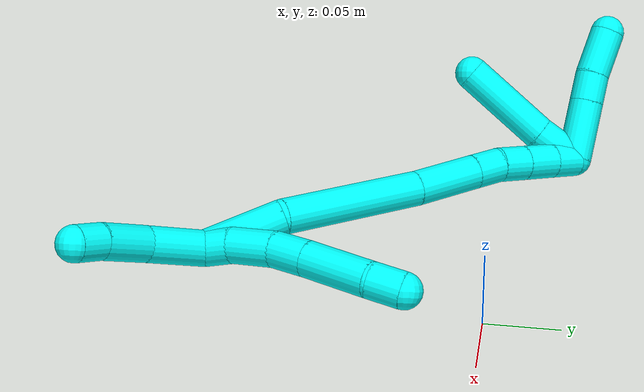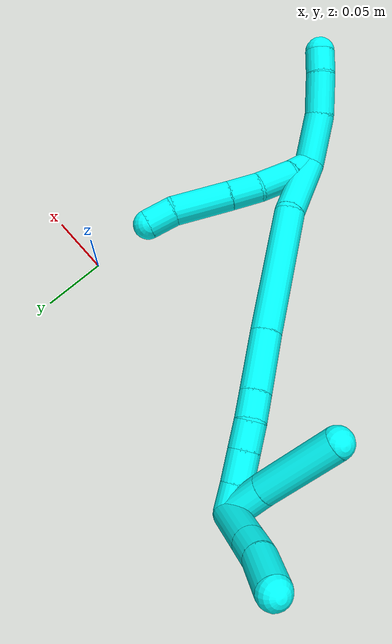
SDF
<sdf version="1.7">
 <world name="default">
  <model name="3">
   <static>0</static>
   <link name="3">
    <collision name="collision-cylinder-e_1_2_8">
     <pose>0.002503 0.009712 0.001713 -1.39621 0.248533 -0.208851</pose>
     <geometry><cylinder><radius>0.0125</radius><length>0.020349</length></cylinder></geometry>
     <surface>
      <friction><ode><mu>1.16</mu><mu2>1.16</mu2><slip1>0</slip1><slip2>0</slip2></ode></friction>
      <contact><ode><kp>1e+06</kp><kd>1</kd><max_vel>0</max_vel><min_depth>0.001</min_depth></ode></contact>
     </surface>
    </collision>
    <visual name="visual-cylinder-e_1_2_8">
     <pose>0.002503 0.009712 0.001713 -1.39621 0.248533 -0.208851</pose>
     <geometry><cylinder><radius>0.0125</radius><length>0.020349</length></cylinder></geometry>
     <material><ambient>0.003922 1 0.996078 1</ambient></material>
    </visual>
    <collision name="collision-cylinder-e_2_8_9">
     <pose>0.010157 0.034553 0.003072 -1.59421 0.328111 -0.335742</pose>
     <geometry><cylinder><radius>0.0125</radius><length>0.031972</length></cylinder></geometry>
     <surface>
      <friction><ode><mu>1.16</mu><mu2>1.16</mu2><slip1>0</slip1><slip2>0</slip2></ode></friction>
      <contact><ode><kp>1e+06</kp><kd>1</kd><max_vel>0</max_vel><min_depth>0.001</min_depth></ode></contact>
     </surface>
    </collision>
    <visual name="visual-cylinder-e_2_8_9">
     <pose>0.010157 0.034553 0.003072 -1.59421 0.328111 -0.335742</pose>
     <geometry><cylinder><radius>0.0125</radius><length>0.031972</length></cylinder></geometry>
     <material><ambient>0.003922 1 0.996078 1</ambient></material>
    </visual>
    <collision name="collision-cylinder-e_3_9_10">
     <pose>0.020408 0.061169 0.000399 -1.76994 0.410439 -0.498147</pose>
     <geometry><cylinder><radius>0.0125</radius><length>0.025559</length></cylinder></geometry>
     <surface>
      <friction><ode><mu>1.16</mu><mu2>1.16</mu2><slip1>0</slip1><slip2>0</slip2></ode></friction>
      <contact><ode><kp>1e+06</kp><kd>1</kd><max_vel>0</max_vel><min_depth>0.001</min_depth></ode></contact>
     </surface>
    </collision>
    <visual name="visual-cylinder-e_3_9_10">
     <pose>0.020408 0.061169 0.000399 -1.76994 0.410439 -0.498147</pose>
     <geometry><cylinder><radius>0.0125</radius><length>0.025559</length></cylinder></geometry>
     <material><ambient>0.003922 1 0.996078 1</ambient></material>
    </visual>
    <collision name="collision-cylinder-e_4_10_11">
     <pose>0.035472 0.094188 -0.006984 -1.80183 0.423254 -0.529746</pose>
     <geometry><cylinder><radius>0.0125</radius><length>0.048522</length></cylinder></geometry>
     <surface>
      <friction><ode><mu>1.16</mu><mu2>1.16</mu2><slip1>0</slip1><slip2>0</slip2></ode></friction>
      <contact><ode><kp>1e+06</kp><kd>1</kd><max_vel>0</max_vel><min_depth>0.001</min_depth></ode></contact>
     </surface>
    </collision>
    <visual name="visual-cylinder-e_4_10_11">
     <pose>0.035472 0.094188 -0.006984 -1.80183 0.423254 -0.529746</pose>
     <geometry><cylinder><radius>0.0125</radius><length>0.048522</length></cylinder></geometry>
     <material><ambient>0.003922 1 0.996078 1</ambient></material>
    </visual>
    <collision name="collision-cylinder-e_5_11_6">
     <pose>0.047804 0.126961 -0.014744 -1.80611 0.201999 -0.255627</pose>
     <geometry><cylinder><radius>0.0125</radius><length>0.023597</length></cylinder></geometry>
     <surface>
      <friction><ode><mu>1.16</mu><mu2>1.16</mu2><slip1>0</slip1><slip2>0</slip2></ode></friction>
      <contact><ode><kp>1e+06</kp><kd>1</kd><max_vel>0</max_vel><min_depth>0.001</min_depth></ode></contact>
     </surface>
    </collision>
    <visual name="visual-cylinder-e_5_11_6">
     <pose>0.047804 0.126961 -0.014744 -1.80611 0.201999 -0.255627</pose>
     <geometry><cylinder><radius>0.0125</radius><length>0.023597</length></cylinder></geometry>
     <material><ambient>0.003922 1 0.996078 1</ambient></material>
    </visual>
    <collision name="collision-cylinder-e_1_2_12">
     <pose>0.013286 -0.017659 0.000816 1.52459 0.644494 0.617236</pose>
     <geometry><cylinder><radius>0.0125</radius><length>0.044227</length></cylinder></geometry>
     <surface>
      <friction><ode><mu>1.16</mu><mu2>1.16</mu2><slip1>0</slip1><slip2>0</slip2></ode></friction>
      <contact><ode><kp>1e+06</kp><kd>1</kd><max_vel>0</max_vel><min_depth>0.001</min_depth></ode></contact>
     </surface>
    </collision>
    <visual name="visual-cylinder-e_1_2_12">
     <pose>0.013286 -0.017659 0.000816 1.52459 0.644494 0.617236</pose>
     <geometry><cylinder><radius>0.0125</radius><length>0.044227</length></cylinder></geometry>
     <material><ambient>0.003922 1 0.996078 1</ambient></material>
    </visual>
    <collision name="collision-cylinder-e_2_12_13">
     <pose>0.039789 -0.047263 0.002139 1.52847 0.835464 0.804509</pose>
     <geometry><cylinder><radius>0.0125</radius><length>0.035647</length></cylinder></geometry>
     <surface>
      <friction><ode><mu>1.16</mu><mu2>1.16</mu2><slip1>0</slip1><slip2>0</slip2></ode></friction>
      <contact><ode><kp>1e+06</kp><kd>1</kd><max_vel>0</max_vel><min_depth>0.001</min_depth></ode></contact>
     </surface>
    </collision>
    <visual name="visual-cylinder-e_2_12_13">
     <pose>0.039789 -0.047263 0.002139 1.52847 0.835464 0.804509</pose>
     <geometry><cylinder><radius>0.0125</radius><length>0.035647</length></cylinder></geometry>
     <material><ambient>0.003922 1 0.996078 1</ambient></material>
    </visual>
    <collision name="collision-cylinder-e_3_13_5">
     <pose>0.060497 -0.065862 0.001693 1.71293 0.839432 0.950566</pose>
     <geometry><cylinder><radius>0.0125</radius><length>0.020127</length></cylinder></geometry>
     <surface>
      <friction><ode><mu>1.16</mu><mu2>1.16</mu2><slip1>0</slip1><slip2>0</slip2></ode></friction>
      <contact><ode><kp>1e+06</kp><kd>1</kd><max_vel>0</max_vel><min_depth>0.001</min_depth></ode></contact>
     </surface>
    </collision>
    <visual name="visual-cylinder-e_3_13_5">
     <pose>0.060497 -0.065862 0.001693 1.71293 0.839432 0.950566</pose>
     <geometry><cylinder><radius>0.0125</radius><length>0.020127</length></cylinder></geometry>
     <material><ambient>0.003922 1 0.996078 1</ambient></material>
    </visual>
    <collision name="collision-cylinder-e_1_2_14">
     <pose>-0.006755 0.025058 0.012005 -1.124 -0.238493 0.150619</pose>
     <geometry><cylinder><radius>0.0125</radius><length>0.057189</length></cylinder></geometry>
     <surface>
      <friction><ode><mu>1.16</mu><mu2>1.16</mu2><slip1>0</slip1><slip2>0</slip2></ode></friction>
      <contact><ode><kp>1e+06</kp><kd>1</kd><max_vel>0</max_vel><min_depth>0.001</min_depth></ode></contact>
     </surface>
    </collision>
    <visual name="visual-cylinder-e_1_2_14">
     <pose>-0.006755 0.025058 0.012005 -1.124 -0.238493 0.150619</pose>
     <geometry><cylinder><radius>0.0125</radius><length>0.057189</length></cylinder></geometry>
     <material><ambient>0.003922 1 0.996078 1</ambient></material>
    </visual>
    <collision name="collision-cylinder-e_2_14_15">
     <pose>-0.039936 0.093705 0.036258 -1.29689 -0.528312 0.404311</pose>
     <geometry><cylinder><radius>0.0125</radius><length>0.10485</length></cylinder></geometry>
     <surface>
      <friction><ode><mu>1.16</mu><mu2>1.16</mu2><slip1>0</slip1><slip2>0</slip2></ode></friction>
      <contact><ode><kp>1e+06</kp><kd>1</kd><max_vel>0</max_vel><min_depth>0.001</min_depth></ode></contact>
     </surface>
    </collision>
    <visual name="visual-cylinder-e_2_14_15">
     <pose>-0.039936 0.093705 0.036258 -1.29689 -0.528312 0.404311</pose>
     <geometry><cylinder><radius>0.0125</radius><length>0.10485</length></cylinder></geometry>
     <material><ambient>0.003922 1 0.996078 1</ambient></material>
    </visual>
    <collision name="collision-cylinder-e_3_15_16">
     <pose>-0.078262 0.157307 0.055698 -1.22575 -0.510131 0.362685</pose>
     <geometry><cylinder><radius>0.0125</radius><length>0.048738</length></cylinder></geometry>
     <surface>
      <friction><ode><mu>1.16</mu><mu2>1.16</mu2><slip1>0</slip1><slip2>0</slip2></ode></friction>
      <contact><ode><kp>1e+06</kp><kd>1</kd><max_vel>0</max_vel><min_depth>0.001</min_depth></ode></contact>
     </surface>
    </collision>
    <visual name="visual-cylinder-e_3_15_16">
     <pose>-0.078262 0.157307 0.055698 -1.22575 -0.510131 0.362685</pose>
     <geometry><cylinder><radius>0.0125</radius><length>0.048738</length></cylinder></geometry>
     <material><ambient>0.003922 1 0.996078 1</ambient></material>
    </visual>
    <collision name="collision-cylinder-e_4_16_17">
     <pose>-0.095497 0.186322 0.066076 -1.2308 -0.5096 0.364206</pose>
     <geometry><cylinder><radius>0.0125</radius><length>0.021877</length></cylinder></geometry>
     <surface>
      <friction><ode><mu>1.16</mu><mu2>1.16</mu2><slip1>0</slip1><slip2>0</slip2></ode></friction>
      <contact><ode><kp>1e+06</kp><kd>1</kd><max_vel>0</max_vel><min_depth>0.001</min_depth></ode></contact>
     </surface>
    </collision>
    <visual name="visual-cylinder-e_4_16_17">
     <pose>-0.095497 0.186322 0.066076 -1.2308 -0.5096 0.364206</pose>
     <geometry><cylinder><radius>0.0125</radius><length>0.021877</length></cylinder></geometry>
     <material><ambient>0.003922 1 0.996078 1</ambient></material>
    </visual>
    <collision name="collision-cylinder-e_5_17_18">
     <pose>-0.106731 0.204483 0.070573 -1.42843 -0.567451 0.495182</pose>
     <geometry><cylinder><radius>0.0125</radius><length>0.021944</length></cylinder></geometry>
     <surface>
      <friction><ode><mu>1.16</mu><mu2>1.16</mu2><slip1>0</slip1><slip2>0</slip2></ode></friction>
      <contact><ode><kp>1e+06</kp><kd>1</kd><max_vel>0</max_vel><min_depth>0.001</min_depth></ode></contact>
     </surface>
    </collision>
    <visual name="visual-cylinder-e_5_17_18">
     <pose>-0.106731 0.204483 0.070573 -1.42843 -0.567451 0.495182</pose>
     <geometry><cylinder><radius>0.0125</radius><length>0.021944</length></cylinder></geometry>
     <material><ambient>0.003922 1 0.996078 1</ambient></material>
    </visual>
    <collision name="collision-cylinder-e_6_18_19">
     <pose>-0.119333 0.22396 0.073412 -1.42391 -0.571326 0.496427</pose>
     <geometry><cylinder><radius>0.0125</radius><length>0.024799</length></cylinder></geometry>
     <surface>
      <friction><ode><mu>1.16</mu><mu2>1.16</mu2><slip1>0</slip1><slip2>0</slip2></ode></friction>
      <contact><ode><kp>1e+06</kp><kd>1</kd><max_vel>0</max_vel><min_depth>0.001</min_depth></ode></contact>
     </surface>
    </collision>
    <visual name="visual-cylinder-e_6_18_19">
     <pose>-0.119333 0.22396 0.073412 -1.42391 -0.571326 0.496427</pose>
     <geometry><cylinder><radius>0.0125</radius><length>0.024799</length></cylinder></geometry>
     <material><ambient>0.003922 1 0.996078 1</ambient></material>
    </visual>
    <collision name="collision-cylinder-e_7_19_1">
     <pose>-0.131312 0.243042 0.076162 -1.43209 -0.53744 0.470347</pose>
     <geometry><cylinder><radius>0.0125</radius><length>0.020603</length></cylinder></geometry>
     <surface>
      <friction><ode><mu>1.16</mu><mu2>1.16</mu2><slip1>0</slip1><slip2>0</slip2></ode></friction>
      <contact><ode><kp>1e+06</kp><kd>1</kd><max_vel>0</max_vel><min_depth>0.001</min_depth></ode></contact>
     </surface>
    </collision>
    <visual name="visual-cylinder-e_7_19_1">
     <pose>-0.131312 0.243042 0.076162 -1.43209 -0.53744 0.470347</pose>
     <geometry><cylinder><radius>0.0125</radius><length>0.020603</length></cylinder></geometry>
     <material><ambient>0.003922 1 0.996078 1</ambient></material>
    </visual>
    <collision name="collision-cylinder-e_1_1_20">
     <pose>-0.135283 0.238156 0.086275 0.99357 0.079778 0.043267</pose>
     <geometry><cylinder><radius>0.0125</radius><length>0.032684</length></cylinder></geometry>
     <surface>
      <friction><ode><mu>1.16</mu><mu2>1.16</mu2><slip1>0</slip1><slip2>0</slip2></ode></friction>
      <contact><ode><kp>1e+06</kp><kd>1</kd><max_vel>0</max_vel><min_depth>0.001</min_depth></ode></contact>
     </surface>
    </collision>
    <visual name="visual-cylinder-e_1_1_20">
     <pose>-0.135283 0.238156 0.086275 0.99357 0.079778 0.043267</pose>
     <geometry><cylinder><radius>0.0125</radius><length>0.032684</length></cylinder></geometry>
     <material><ambient>0.003922 1 0.996078 1</ambient></material>
    </visual>
    <collision name="collision-cylinder-e_2_20_4">
     <pose>-0.131587 0.198308 0.116162 0.89513 0.07117 0.034177</pose>
     <geometry><cylinder><radius>0.0125</radius><length>0.067316</length></cylinder></geometry>
     <surface>
      <friction><ode><mu>1.16</mu><mu2>1.16</mu2><slip1>0</slip1><slip2>0</slip2></ode></friction>
      <contact><ode><kp>1e+06</kp><kd>1</kd><max_vel>0</max_vel><min_depth>0.001</min_depth></ode></contact>
     </surface>
    </collision>
    <visual name="visual-cylinder-e_2_20_4">
     <pose>-0.131587 0.198308 0.116162 0.89513 0.07117 0.034177</pose>
     <geometry><cylinder><radius>0.0125</radius><length>0.067316</length></cylinder></geometry>
     <material><ambient>0.003922 1 0.996078 1</ambient></material>
    </visual>
    <collision name="collision-cylinder-e_1_1_21">
     <pose>-0.138952 0.255279 0.098934 -0.159784 -0.108018 0.008657</pose>
     <geometry><cylinder><radius>0.0125</radius><length>0.043908</length></cylinder></geometry>
     <surface>
      <friction><ode><mu>1.16</mu><mu2>1.16</mu2><slip1>0</slip1><slip2>0</slip2></ode></friction>
      <contact><ode><kp>1e+06</kp><kd>1</kd><max_vel>0</max_vel><min_depth>0.001</min_depth></ode></contact>
     </surface>
    </collision>
    <visual name="visual-cylinder-e_1_1_21">
     <pose>-0.138952 0.255279 0.098934 -0.159784 -0.108018 0.008657</pose>
     <geometry><cylinder><radius>0.0125</radius><length>0.043908</length></cylinder></geometry>
     <material><ambient>0.003922 1 0.996078 1</ambient></material>
    </visual>
    <collision name="collision-cylinder-e_2_21_22">
     <pose>-0.142506 0.260479 0.131047 -0.162108 -0.110434 0.00898</pose>
     <geometry><cylinder><radius>0.0125</radius><length>0.021543</length></cylinder></geometry>
     <surface>
      <friction><ode><mu>1.16</mu><mu2>1.16</mu2><slip1>0</slip1><slip2>0</slip2></ode></friction>
      <contact><ode><kp>1e+06</kp><kd>1</kd><max_vel>0</max_vel><min_depth>0.001</min_depth></ode></contact>
     </surface>
    </collision>
    <visual name="visual-cylinder-e_2_21_22">
     <pose>-0.142506 0.260479 0.131047 -0.162108 -0.110434 0.00898</pose>
     <geometry><cylinder><radius>0.0125</radius><length>0.021543</length></cylinder></geometry>
     <material><ambient>0.003922 1 0.996078 1</ambient></material>
    </visual>
    <collision name="collision-cylinder-e_3_22_3">
     <pose>-0.145936 0.267117 0.158022 -0.290738 -0.130201 0.019088</pose>
     <geometry><cylinder><radius>0.0125</radius><length>0.03455</length></cylinder></geometry>
     <surface>
      <friction><ode><mu>1.16</mu><mu2>1.16</mu2><slip1>0</slip1><slip2>0</slip2></ode></friction>
      <contact><ode><kp>1e+06</kp><kd>1</kd><max_vel>0</max_vel><min_depth>0.001</min_depth></ode></contact>
     </surface>
    </collision>
    <visual name="visual-cylinder-e_3_22_3">
     <pose>-0.145936 0.267117 0.158022 -0.290738 -0.130201 0.019088</pose>
     <geometry><cylinder><radius>0.0125</radius><length>0.03455</length></cylinder></geometry>
     <material><ambient>0.003922 1 0.996078 1</ambient></material>
    </visual>
    <collision name="collision-sphere-3">
     <pose>-0.148179 0.272027 0.174432 0 -0 0</pose>
     <geometry><sphere><radius>0.0125</radius></sphere></geometry>
     <surface>
      <friction><ode><mu>1.16</mu><mu2>1.16</mu2><slip1>0</slip1><slip2>0</slip2></ode></friction>
      <contact><ode><kp>1e+06</kp><kd>1</kd><max_vel>0</max_vel><min_depth>0.001</min_depth></ode></contact>
     </surface>
    </collision>
    <visual name="visual-sphere-3">
     <pose>-0.148179 0.272027 0.174432 0 -0 0</pose>
     <geometry><sphere><radius>0.0125</radius></sphere></geometry>
     <material><ambient>0.003922 1 0.996078 1</ambient></material>
    </visual>
    <collision name="collision-sphere-22">
     <pose>-0.143693 0.262207 0.141612 0 -0 0</pose>
     <geometry><sphere><radius>0.0125</radius></sphere></geometry>
     <surface>
      <friction><ode><mu>1.16</mu><mu2>1.16</mu2><slip1>0</slip1><slip2>0</slip2></ode></friction>
      <contact><ode><kp>1e+06</kp><kd>1</kd><max_vel>0</max_vel><min_depth>0.001</min_depth></ode></contact>
     </surface>
    </collision>
    <visual name="visual-sphere-22">
     <pose>-0.143693 0.262207 0.141612 0 -0 0</pose>
     <geometry><sphere><radius>0.0125</radius></sphere></geometry>
     <material><ambient>0.003922 1 0.996078 1</ambient></material>
    </visual>
    <collision name="collision-sphere-21">
     <pose>-0.141319 0.258751 0.120481 0 -0 0</pose>
     <geometry><sphere><radius>0.0125</radius></sphere></geometry>
     <surface>
      <friction><ode><mu>1.16</mu><mu2>1.16</mu2><slip1>0</slip1><slip2>0</slip2></ode></friction>
      <contact><ode><kp>1e+06</kp><kd>1</kd><max_vel>0</max_vel><min_depth>0.001</min_depth></ode></contact>
     </surface>
    </collision>
    <visual name="visual-sphere-21">
     <pose>-0.141319 0.258751 0.120481 0 -0 0</pose>
     <geometry><sphere><radius>0.0125</radius></sphere></geometry>
     <material><ambient>0.003922 1 0.996078 1</ambient></material>
    </visual>
    <collision name="collision-sphere-4">
     <pose>-0.129194 0.172112 0.137159 0 -0 0</pose>
     <geometry><sphere><radius>0.0125</radius></sphere></geometry>
     <surface>
      <friction><ode><mu>1.16</mu><mu2>1.16</mu2><slip1>0</slip1><slip2>0</slip2></ode></friction>
      <contact><ode><kp>1e+06</kp><kd>1</kd><max_vel>0</max_vel><min_depth>0.001</min_depth></ode></contact>
     </surface>
    </collision>
    <visual name="visual-sphere-4">
     <pose>-0.129194 0.172112 0.137159 0 -0 0</pose>
     <geometry><sphere><radius>0.0125</radius></sphere></geometry>
     <material><ambient>0.003922 1 0.996078 1</ambient></material>
    </visual>
    <collision name="collision-sphere-20">
     <pose>-0.133981 0.224505 0.095165 0 -0 0</pose>
     <geometry><sphere><radius>0.0125</radius></sphere></geometry>
     <surface>
      <friction><ode><mu>1.16</mu><mu2>1.16</mu2><slip1>0</slip1><slip2>0</slip2></ode></friction>
      <contact><ode><kp>1e+06</kp><kd>1</kd><max_vel>0</max_vel><min_depth>0.001</min_depth></ode></contact>
     </surface>
    </collision>
    <visual name="visual-sphere-20">
     <pose>-0.133981 0.224505 0.095165 0 -0 0</pose>
     <geometry><sphere><radius>0.0125</radius></sphere></geometry>
     <material><ambient>0.003922 1 0.996078 1</ambient></material>
    </visual>
    <collision name="collision-sphere-6">
     <pose>0.050171 0.138201 -0.017439 0 -0 0</pose>
     <geometry><sphere><radius>0.0125</radius></sphere></geometry>
     <surface>
      <friction><ode><mu>1.16</mu><mu2>1.16</mu2><slip1>0</slip1><slip2>0</slip2></ode></friction>
      <contact><ode><kp>1e+06</kp><kd>1</kd><max_vel>0</max_vel><min_depth>0.001</min_depth></ode></contact>
     </surface>
    </collision>
    <visual name="visual-sphere-6">
     <pose>0.050171 0.138201 -0.017439 0 -0 0</pose>
     <geometry><sphere><radius>0.0125</radius></sphere></geometry>
     <material><ambient>0.003922 1 0.996078 1</ambient></material>
    </visual>
    <collision name="collision-sphere-11">
     <pose>0.045437 0.115721 -0.012049 0 -0 0</pose>
     <geometry><sphere><radius>0.0125</radius></sphere></geometry>
     <surface>
      <friction><ode><mu>1.16</mu><mu2>1.16</mu2><slip1>0</slip1><slip2>0</slip2></ode></friction>
      <contact><ode><kp>1e+06</kp><kd>1</kd><max_vel>0</max_vel><min_depth>0.001</min_depth></ode></contact>
     </surface>
    </collision>
    <visual name="visual-sphere-11">
     <pose>0.045437 0.115721 -0.012049 0 -0 0</pose>
     <geometry><sphere><radius>0.0125</radius></sphere></geometry>
     <material><ambient>0.003922 1 0.996078 1</ambient></material>
    </visual>
    <collision name="collision-sphere-10">
     <pose>0.025507 0.072656 -0.001919 0 -0 0</pose>
     <geometry><sphere><radius>0.0125</radius></sphere></geometry>
     <surface>
      <friction><ode><mu>1.16</mu><mu2>1.16</mu2><slip1>0</slip1><slip2>0</slip2></ode></friction>
      <contact><ode><kp>1e+06</kp><kd>1</kd><max_vel>0</max_vel><min_depth>0.001</min_depth></ode></contact>
     </surface>
    </collision>
    <visual name="visual-sphere-10">
     <pose>0.025507 0.072656 -0.001919 0 -0 0</pose>
     <geometry><sphere><radius>0.0125</radius></sphere></geometry>
     <material><ambient>0.003922 1 0.996078 1</ambient></material>
    </visual>
    <collision name="collision-sphere-9">
     <pose>0.015309 0.049682 0.002717 0 -0 0</pose>
     <geometry><sphere><radius>0.0125</radius></sphere></geometry>
     <surface>
      <friction><ode><mu>1.16</mu><mu2>1.16</mu2><slip1>0</slip1><slip2>0</slip2></ode></friction>
      <contact><ode><kp>1e+06</kp><kd>1</kd><max_vel>0</max_vel><min_depth>0.001</min_depth></ode></contact>
     </surface>
    </collision>
    <visual name="visual-sphere-9">
     <pose>0.015309 0.049682 0.002717 0 -0 0</pose>
     <geometry><sphere><radius>0.0125</radius></sphere></geometry>
     <material><ambient>0.003922 1 0.996078 1</ambient></material>
    </visual>
    <collision name="collision-sphere-2">
     <geometry><sphere><radius>0.0125</radius></sphere></geometry>
     <surface>
      <friction><ode><mu>1.16</mu><mu2>1.16</mu2><slip1>0</slip1><slip2>0</slip2></ode></friction>
      <contact><ode><kp>1e+06</kp><kd>1</kd><max_vel>0</max_vel><min_depth>0.001</min_depth></ode></contact>
     </surface>
    </collision>
    <visual name="visual-sphere-2">
     <geometry><sphere><radius>0.0125</radius></sphere></geometry>
     <material><ambient>0.003922 1 0.996078 1</ambient></material>
    </visual>
    <collision name="collision-sphere-19">
     <pose>-0.126038 0.234277 0.074939 0 -0 0</pose>
     <geometry><sphere><radius>0.0125</radius></sphere></geometry>
     <surface>
      <friction><ode><mu>1.16</mu><mu2>1.16</mu2><slip1>0</slip1><slip2>0</slip2></ode></friction>
      <contact><ode><kp>1e+06</kp><kd>1</kd><max_vel>0</max_vel><min_depth>0.001</min_depth></ode></contact>
     </surface>
    </collision>
    <visual name="visual-sphere-19">
     <pose>-0.126038 0.234277 0.074939 0 -0 0</pose>
     <geometry><sphere><radius>0.0125</radius></sphere></geometry>
     <material><ambient>0.003922 1 0.996078 1</ambient></material>
    </visual>
    <collision name="collision-sphere-8">
     <pose>0.005006 0.019424 0.003426 0 -0 0</pose>
     <geometry><sphere><radius>0.0125</radius></sphere></geometry>
     <surface>
      <friction><ode><mu>1.16</mu><mu2>1.16</mu2><slip1>0</slip1><slip2>0</slip2></ode></friction>
      <contact><ode><kp>1e+06</kp><kd>1</kd><max_vel>0</max_vel><min_depth>0.001</min_depth></ode></contact>
     </surface>
    </collision>
    <visual name="visual-sphere-8">
     <pose>0.005006 0.019424 0.003426 0 -0 0</pose>
     <geometry><sphere><radius>0.0125</radius></sphere></geometry>
     <material><ambient>0.003922 1 0.996078 1</ambient></material>
    </visual>
    <collision name="collision-sphere-12">
     <pose>0.026571 -0.035317 0.001633 0 -0 0</pose>
     <geometry><sphere><radius>0.0125</radius></sphere></geometry>
     <surface>
      <friction><ode><mu>1.16</mu><mu2>1.16</mu2><slip1>0</slip1><slip2>0</slip2></ode></friction>
      <contact><ode><kp>1e+06</kp><kd>1</kd><max_vel>0</max_vel><min_depth>0.001</min_depth></ode></contact>
     </surface>
    </collision>
    <visual name="visual-sphere-12">
     <pose>0.026571 -0.035317 0.001633 0 -0 0</pose>
     <geometry><sphere><radius>0.0125</radius></sphere></geometry>
     <material><ambient>0.003922 1 0.996078 1</ambient></material>
    </visual>
    <collision name="collision-sphere-13">
     <pose>0.053007 -0.059209 0.002645 0 -0 0</pose>
     <geometry><sphere><radius>0.0125</radius></sphere></geometry>
     <surface>
      <friction><ode><mu>1.16</mu><mu2>1.16</mu2><slip1>0</slip1><slip2>0</slip2></ode></friction>
      <contact><ode><kp>1e+06</kp><kd>1</kd><max_vel>0</max_vel><min_depth>0.001</min_depth></ode></contact>
     </surface>
    </collision>
    <visual name="visual-sphere-13">
     <pose>0.053007 -0.059209 0.002645 0 -0 0</pose>
     <geometry><sphere><radius>0.0125</radius></sphere></geometry>
     <material><ambient>0.003922 1 0.996078 1</ambient></material>
    </visual>
    <collision name="collision-sphere-5">
     <pose>0.067987 -0.072516 0.000741 0 -0 0</pose>
     <geometry><sphere><radius>0.0125</radius></sphere></geometry>
     <surface>
      <friction><ode><mu>1.16</mu><mu2>1.16</mu2><slip1>0</slip1><slip2>0</slip2></ode></friction>
      <contact><ode><kp>1e+06</kp><kd>1</kd><max_vel>0</max_vel><min_depth>0.001</min_depth></ode></contact>
     </surface>
    </collision>
    <visual name="visual-sphere-5">
     <pose>0.067987 -0.072516 0.000741 0 -0 0</pose>
     <geometry><sphere><radius>0.0125</radius></sphere></geometry>
     <material><ambient>0.003922 1 0.996078 1</ambient></material>
    </visual>
    <collision name="collision-sphere-14">
     <pose>-0.01351 0.050115 0.024011 0 -0 0</pose>
     <geometry><sphere><radius>0.0125</radius></sphere></geometry>
     <surface>
      <friction><ode><mu>1.16</mu><mu2>1.16</mu2><slip1>0</slip1><slip2>0</slip2></ode></friction>
      <contact><ode><kp>1e+06</kp><kd>1</kd><max_vel>0</max_vel><min_depth>0.001</min_depth></ode></contact>
     </surface>
    </collision>
    <visual name="visual-sphere-14">
     <pose>-0.01351 0.050115 0.024011 0 -0 0</pose>
     <geometry><sphere><radius>0.0125</radius></sphere></geometry>
     <material><ambient>0.003922 1 0.996078 1</ambient></material>
    </visual>
    <collision name="collision-sphere-15">
     <pose>-0.066363 0.137294 0.048505 0 -0 0</pose>
     <geometry><sphere><radius>0.0125</radius></sphere></geometry>
     <surface>
      <friction><ode><mu>1.16</mu><mu2>1.16</mu2><slip1>0</slip1><slip2>0</slip2></ode></friction>
      <contact><ode><kp>1e+06</kp><kd>1</kd><max_vel>0</max_vel><min_depth>0.001</min_depth></ode></contact>
     </surface>
    </collision>
    <visual name="visual-sphere-15">
     <pose>-0.066363 0.137294 0.048505 0 -0 0</pose>
     <geometry><sphere><radius>0.0125</radius></sphere></geometry>
     <material><ambient>0.003922 1 0.996078 1</ambient></material>
    </visual>
    <collision name="collision-sphere-16">
     <pose>-0.090161 0.17732 0.062891 0 -0 0</pose>
     <geometry><sphere><radius>0.0125</radius></sphere></geometry>
     <surface>
      <friction><ode><mu>1.16</mu><mu2>1.16</mu2><slip1>0</slip1><slip2>0</slip2></ode></friction>
      <contact><ode><kp>1e+06</kp><kd>1</kd><max_vel>0</max_vel><min_depth>0.001</min_depth></ode></contact>
     </surface>
    </collision>
    <visual name="visual-sphere-16">
     <pose>-0.090161 0.17732 0.062891 0 -0 0</pose>
     <geometry><sphere><radius>0.0125</radius></sphere></geometry>
     <material><ambient>0.003922 1 0.996078 1</ambient></material>
    </visual>
    <collision name="collision-sphere-17">
     <pose>-0.100833 0.195324 0.06926 0 -0 0</pose>
     <geometry><sphere><radius>0.0125</radius></sphere></geometry>
     <surface>
      <friction><ode><mu>1.16</mu><mu2>1.16</mu2><slip1>0</slip1><slip2>0</slip2></ode></friction>
      <contact><ode><kp>1e+06</kp><kd>1</kd><max_vel>0</max_vel><min_depth>0.001</min_depth></ode></contact>
     </surface>
    </collision>
    <visual name="visual-sphere-17">
     <pose>-0.100833 0.195324 0.06926 0 -0 0</pose>
     <geometry><sphere><radius>0.0125</radius></sphere></geometry>
     <material><ambient>0.003922 1 0.996078 1</ambient></material>
    </visual>
    <collision name="collision-sphere-18">
     <pose>-0.112628 0.213642 0.071886 0 -0 0</pose>
     <geometry><sphere><radius>0.0125</radius></sphere></geometry>
     <surface>
      <friction><ode><mu>1.16</mu><mu2>1.16</mu2><slip1>0</slip1><slip2>0</slip2></ode></friction>
      <contact><ode><kp>1e+06</kp><kd>1</kd><max_vel>0</max_vel><min_depth>0.001</min_depth></ode></contact>
     </surface>
    </collision>
    <visual name="visual-sphere-18">
     <pose>-0.112628 0.213642 0.071886 0 -0 0</pose>
     <geometry><sphere><radius>0.0125</radius></sphere></geometry>
     <material><ambient>0.003922 1 0.996078 1</ambient></material>
    </visual>
    <collision name="collision-sphere-1">
     <pose>-0.136585 0.251806 0.077386 0 -0 0</pose>
     <geometry><sphere><radius>0.0125</radius></sphere></geometry>
     <surface>
      <friction><ode><mu>1.16</mu><mu2>1.16</mu2><slip1>0</slip1><slip2>0</slip2></ode></friction>
      <contact><ode><kp>1e+06</kp><kd>1</kd><max_vel>0</max_vel><min_depth>0.001</min_depth></ode></contact>
     </surface>
    </collision>
    <visual name="visual-sphere-1">
     <pose>-0.136585 0.251806 0.077386 0 -0 0</pose>
     <geometry><sphere><radius>0.0125</radius></sphere></geometry>
     <material><ambient>0.003922 1 0.996078 1</ambient></material>
    </visual>
    <inertial>
     <pose>-0.052009 0.122496 0.048607 0 -0 0</pose>
     <mass>0.75</mass>
     <inertia>
      <ixx>0.000227</ixx>
      <ixy>0</ixy>
      <ixz>0</ixz>
      <iyy>0.000166</iyy>
      <iyz>0</iyz>
      <izz>-3.7e-05</izz>
     </inertia>
    </inertial>
   </link>
   <pose>-0.049812 -0.191837 0.01149 -0.01886 -0.488658 0.063046</pose>
  </model>
 </world>
</sdf>
